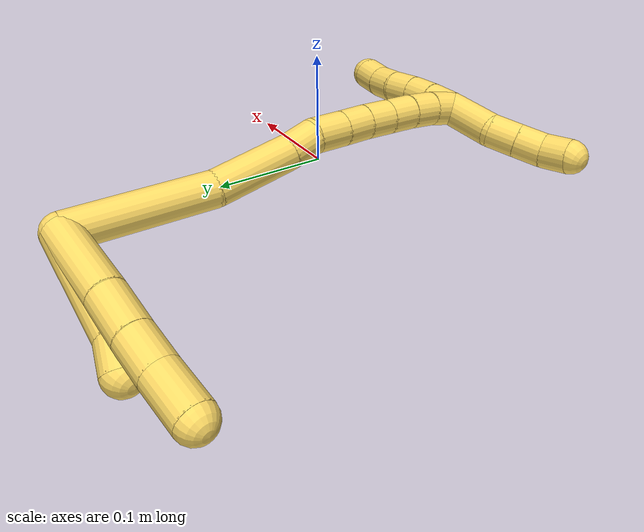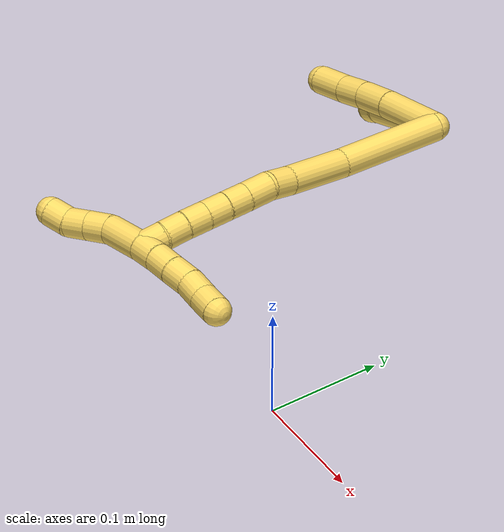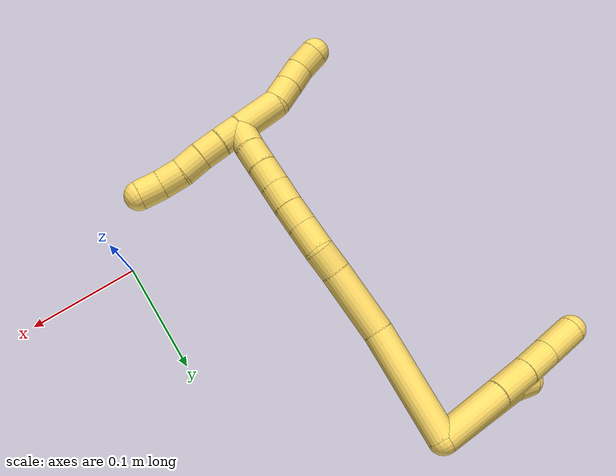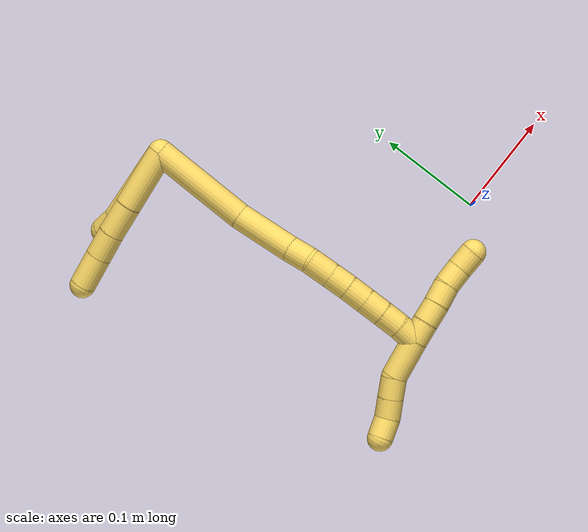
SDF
<sdf version="1.7">
 <world name="default">
  <model name="bin">
   <static>1</static>
   <link name="bottom">
    <collision name="collision-bottom">
     <pose>0 0 -0.01 0 -0 0</pose>
     <geometry><box><size>0.8 0.6 0.02</size></box></geometry>
     <surface>
      <friction><ode><mu>100</mu><mu2>100</mu2></ode></friction>
      <contact><collide_bitmask>65535</collide_bitmask></contact>
     </surface>
    </collision>
   </link>
   <link name="west_wall">
    <collision name="collision-west_wall">
     <pose>-0.41 0 0.1 0 -0 0</pose>
     <geometry><box><size>0.02 0.6 0.2</size></box></geometry>
     <surface>
      <friction><ode><mu>100</mu><mu2>100</mu2></ode></friction>
      <contact><collide_bitmask>65535</collide_bitmask></contact>
     </surface>
    </collision>
   </link>
   <link name="east_wall">
    <collision name="collision-east_wall">
     <pose>0.41 0 0.1 0 -0 0</pose>
     <geometry><box><size>0.02 0.6 0.2</size></box></geometry>
     <surface>
      <friction><ode><mu>100</mu><mu2>100</mu2></ode></friction>
      <contact><collide_bitmask>65535</collide_bitmask></contact>
     </surface>
    </collision>
   </link>
   <link name="south_wall">
    <collision name="collision-south_wall">
     <pose>0 -0.31 0.1 0 -0 0</pose>
     <geometry><box><size>0.8 0.02 0.2</size></box></geometry>
     <surface>
      <friction><ode><mu>100</mu><mu2>100</mu2></ode></friction>
      <contact><collide_bitmask>65535</collide_bitmask></contact>
     </surface>
    </collision>
   </link>
   <link name="north_wall">
    <collision name="collision-north_wall">
     <pose>0 0.31 0.1 0 -0 0</pose>
     <geometry><box><size>0.8 0.02 0.2</size></box></geometry>
     <surface>
      <friction><ode><mu>100</mu><mu2>100</mu2></ode></friction>
      <contact><collide_bitmask>65535</collide_bitmask></contact>
     </surface>
    </collision>
   </link>
  </model>
  <model name="5">
   <static>0</static>
   <link name="5">
    <collision name="collision-cylinder-e_1_2_8">
     <pose>-0.001733 0.000931 0.029857 -0.031187 -0.057959 0.000904</pose>
     <geometry><cylinder><radius>0.0125</radius><length>0.059844</length></cylinder></geometry>
     <surface>
      <friction><ode><mu>1.16</mu><mu2>1.16</mu2><slip1>0</slip1><slip2>0</slip2></ode></friction>
      <contact><ode><kp>1e+06</kp><kd>1</kd><max_vel>0</max_vel><min_depth>0.001</min_depth></ode></contact>
     </surface>
    </collision>
    <visual name="visual-cylinder-e_1_2_8">
     <pose>-0.001733 0.000931 0.029857 -0.031187 -0.057959 0.000904</pose>
     <geometry><cylinder><radius>0.0125</radius><length>0.059844</length></cylinder></geometry>
     <material><ambient>1 0.858824 0.4 1</ambient></material>
    </visual>
    <collision name="collision-cylinder-e_2_8_9">
     <pose>-0.005385 0.002286 0.075411 -0.026939 -0.121595 0.00164</pose>
     <geometry><cylinder><radius>0.0125</radius><length>0.031637</length></cylinder></geometry>
     <surface>
      <friction><ode><mu>1.16</mu><mu2>1.16</mu2><slip1>0</slip1><slip2>0</slip2></ode></friction>
      <contact><ode><kp>1e+06</kp><kd>1</kd><max_vel>0</max_vel><min_depth>0.001</min_depth></ode></contact>
     </surface>
    </collision>
    <visual name="visual-cylinder-e_2_8_9">
     <pose>-0.005385 0.002286 0.075411 -0.026939 -0.121595 0.00164</pose>
     <geometry><cylinder><radius>0.0125</radius><length>0.031637</length></cylinder></geometry>
     <material><ambient>1 0.858824 0.4 1</ambient></material>
    </visual>
    <collision name="collision-cylinder-e_3_9_10">
     <pose>-0.009206 0.002532 0.104175 0.013522 -0.144492 -0.000979</pose>
     <geometry><cylinder><radius>0.0125</radius><length>0.026412</length></cylinder></geometry>
     <surface>
      <friction><ode><mu>1.16</mu><mu2>1.16</mu2><slip1>0</slip1><slip2>0</slip2></ode></friction>
      <contact><ode><kp>1e+06</kp><kd>1</kd><max_vel>0</max_vel><min_depth>0.001</min_depth></ode></contact>
     </surface>
    </collision>
    <visual name="visual-cylinder-e_3_9_10">
     <pose>-0.009206 0.002532 0.104175 0.013522 -0.144492 -0.000979</pose>
     <geometry><cylinder><radius>0.0125</radius><length>0.026412</length></cylinder></geometry>
     <material><ambient>1 0.858824 0.4 1</ambient></material>
    </visual>
    <collision name="collision-cylinder-e_4_10_6">
     <pose>-0.012484 0.002138 0.133234 0.013569 -0.08586 -0.000583</pose>
     <geometry><cylinder><radius>0.0125</radius><length>0.032106</length></cylinder></geometry>
     <surface>
      <friction><ode><mu>1.16</mu><mu2>1.16</mu2><slip1>0</slip1><slip2>0</slip2></ode></friction>
      <contact><ode><kp>1e+06</kp><kd>1</kd><max_vel>0</max_vel><min_depth>0.001</min_depth></ode></contact>
     </surface>
    </collision>
    <visual name="visual-cylinder-e_4_10_6">
     <pose>-0.012484 0.002138 0.133234 0.013569 -0.08586 -0.000583</pose>
     <geometry><cylinder><radius>0.0125</radius><length>0.032106</length></cylinder></geometry>
     <material><ambient>1 0.858824 0.4 1</ambient></material>
    </visual>
    <collision name="collision-cylinder-e_1_2_11">
     <pose>-0.00862 0.002303 0.038723 -0.059406 -0.218653 0.006523</pose>
     <geometry><cylinder><radius>0.0125</radius><length>0.079475</length></cylinder></geometry>
     <surface>
      <friction><ode><mu>1.16</mu><mu2>1.16</mu2><slip1>0</slip1><slip2>0</slip2></ode></friction>
      <contact><ode><kp>1e+06</kp><kd>1</kd><max_vel>0</max_vel><min_depth>0.001</min_depth></ode></contact>
     </surface>
    </collision>
    <visual name="visual-cylinder-e_1_2_11">
     <pose>-0.00862 0.002303 0.038723 -0.059406 -0.218653 0.006523</pose>
     <geometry><cylinder><radius>0.0125</radius><length>0.079475</length></cylinder></geometry>
     <material><ambient>1 0.858824 0.4 1</ambient></material>
    </visual>
    <collision name="collision-cylinder-e_2_11_5">
     <pose>-0.022056 0.006948 0.0862 -0.26144 -0.488523 0.065511</pose>
     <geometry><cylinder><radius>0.0125</radius><length>0.020525</length></cylinder></geometry>
     <surface>
      <friction><ode><mu>1.16</mu><mu2>1.16</mu2><slip1>0</slip1><slip2>0</slip2></ode></friction>
      <contact><ode><kp>1e+06</kp><kd>1</kd><max_vel>0</max_vel><min_depth>0.001</min_depth></ode></contact>
     </surface>
    </collision>
    <visual name="visual-cylinder-e_2_11_5">
     <pose>-0.022056 0.006948 0.0862 -0.26144 -0.488523 0.065511</pose>
     <geometry><cylinder><radius>0.0125</radius><length>0.020525</length></cylinder></geometry>
     <material><ambient>1 0.858824 0.4 1</ambient></material>
    </visual>
    <collision name="collision-cylinder-e_1_2_12">
     <pose>0.007593 -0.046879 0.0073 1.41631 0.158691 0.135967</pose>
     <geometry><cylinder><radius>0.0125</radius><length>0.096095</length></cylinder></geometry>
     <surface>
      <friction><ode><mu>1.16</mu><mu2>1.16</mu2><slip1>0</slip1><slip2>0</slip2></ode></friction>
      <contact><ode><kp>1e+06</kp><kd>1</kd><max_vel>0</max_vel><min_depth>0.001</min_depth></ode></contact>
     </surface>
    </collision>
    <visual name="visual-cylinder-e_1_2_12">
     <pose>0.007593 -0.046879 0.0073 1.41631 0.158691 0.135967</pose>
     <geometry><cylinder><radius>0.0125</radius><length>0.096095</length></cylinder></geometry>
     <material><ambient>1 0.858824 0.4 1</ambient></material>
    </visual>
    <collision name="collision-cylinder-e_2_12_13">
     <pose>0.023602 -0.121312 0.015586 1.53506 0.296274 0.286014</pose>
     <geometry><cylinder><radius>0.0125</radius><length>0.057657</length></cylinder></geometry>
     <surface>
      <friction><ode><mu>1.16</mu><mu2>1.16</mu2><slip1>0</slip1><slip2>0</slip2></ode></friction>
      <contact><ode><kp>1e+06</kp><kd>1</kd><max_vel>0</max_vel><min_depth>0.001</min_depth></ode></contact>
     </surface>
    </collision>
    <visual name="visual-cylinder-e_2_12_13">
     <pose>0.023602 -0.121312 0.015586 1.53506 0.296274 0.286014</pose>
     <geometry><cylinder><radius>0.0125</radius><length>0.057657</length></cylinder></geometry>
     <material><ambient>1 0.858824 0.4 1</ambient></material>
    </visual>
    <collision name="collision-cylinder-e_3_13_14">
     <pose>0.036153 -0.159078 0.016359 1.59157 0.384594 0.392463</pose>
     <geometry><cylinder><radius>0.0125</radius><length>0.022036</length></cylinder></geometry>
     <surface>
      <friction><ode><mu>1.16</mu><mu2>1.16</mu2><slip1>0</slip1><slip2>0</slip2></ode></friction>
      <contact><ode><kp>1e+06</kp><kd>1</kd><max_vel>0</max_vel><min_depth>0.001</min_depth></ode></contact>
     </surface>
    </collision>
    <visual name="visual-cylinder-e_3_13_14">
     <pose>0.036153 -0.159078 0.016359 1.59157 0.384594 0.392463</pose>
     <geometry><cylinder><radius>0.0125</radius><length>0.022036</length></cylinder></geometry>
     <material><ambient>1 0.858824 0.4 1</ambient></material>
    </visual>
    <collision name="collision-cylinder-e_4_14_15">
     <pose>0.041676 -0.181047 0.01725 1.47722 0.117146 0.106687</pose>
     <geometry><cylinder><radius>0.0125</radius><length>0.023782</length></cylinder></geometry>
     <surface>
      <friction><ode><mu>1.16</mu><mu2>1.16</mu2><slip1>0</slip1><slip2>0</slip2></ode></friction>
      <contact><ode><kp>1e+06</kp><kd>1</kd><max_vel>0</max_vel><min_depth>0.001</min_depth></ode></contact>
     </surface>
    </collision>
    <visual name="visual-cylinder-e_4_14_15">
     <pose>0.041676 -0.181047 0.01725 1.47722 0.117146 0.106687</pose>
     <geometry><cylinder><radius>0.0125</radius><length>0.023782</length></cylinder></geometry>
     <material><ambient>1 0.858824 0.4 1</ambient></material>
    </visual>
    <collision name="collision-cylinder-e_5_15_16">
     <pose>0.044425 -0.202679 0.019277 1.47759 0.136169 0.124066</pose>
     <geometry><cylinder><radius>0.0125</radius><length>0.020018</length></cylinder></geometry>
     <surface>
      <friction><ode><mu>1.16</mu><mu2>1.16</mu2><slip1>0</slip1><slip2>0</slip2></ode></friction>
      <contact><ode><kp>1e+06</kp><kd>1</kd><max_vel>0</max_vel><min_depth>0.001</min_depth></ode></contact>
     </surface>
    </collision>
    <visual name="visual-cylinder-e_5_15_16">
     <pose>0.044425 -0.202679 0.019277 1.47759 0.136169 0.124066</pose>
     <geometry><cylinder><radius>0.0125</radius><length>0.020018</length></cylinder></geometry>
     <material><ambient>1 0.858824 0.4 1</ambient></material>
    </visual>
    <collision name="collision-cylinder-e_6_16_17">
     <pose>0.046857 -0.222473 0.02149 1.44146 0.106883 0.093902</pose>
     <geometry><cylinder><radius>0.0125</radius><length>0.020124</length></cylinder></geometry>
     <surface>
      <friction><ode><mu>1.16</mu><mu2>1.16</mu2><slip1>0</slip1><slip2>0</slip2></ode></friction>
      <contact><ode><kp>1e+06</kp><kd>1</kd><max_vel>0</max_vel><min_depth>0.001</min_depth></ode></contact>
     </surface>
    </collision>
    <visual name="visual-cylinder-e_6_16_17">
     <pose>0.046857 -0.222473 0.02149 1.44146 0.106883 0.093902</pose>
     <geometry><cylinder><radius>0.0125</radius><length>0.020124</length></cylinder></geometry>
     <material><ambient>1 0.858824 0.4 1</ambient></material>
    </visual>
    <collision name="collision-cylinder-e_7_17_18">
     <pose>0.049026 -0.242358 0.024063 1.44276 0.108648 0.095579</pose>
     <geometry><cylinder><radius>0.0125</radius><length>0.020214</length></cylinder></geometry>
     <surface>
      <friction><ode><mu>1.16</mu><mu2>1.16</mu2><slip1>0</slip1><slip2>0</slip2></ode></friction>
      <contact><ode><kp>1e+06</kp><kd>1</kd><max_vel>0</max_vel><min_depth>0.001</min_depth></ode></contact>
     </surface>
    </collision>
    <visual name="visual-cylinder-e_7_17_18">
     <pose>0.049026 -0.242358 0.024063 1.44276 0.108648 0.095579</pose>
     <geometry><cylinder><radius>0.0125</radius><length>0.020214</length></cylinder></geometry>
     <material><ambient>1 0.858824 0.4 1</ambient></material>
    </visual>
    <collision name="collision-cylinder-e_8_18_19">
     <pose>0.050651 -0.262243 0.026763 1.42894 0.052678 0.045692</pose>
     <geometry><cylinder><radius>0.0125</radius><length>0.020067</length></cylinder></geometry>
     <surface>
      <friction><ode><mu>1.16</mu><mu2>1.16</mu2><slip1>0</slip1><slip2>0</slip2></ode></friction>
      <contact><ode><kp>1e+06</kp><kd>1</kd><max_vel>0</max_vel><min_depth>0.001</min_depth></ode></contact>
     </surface>
    </collision>
    <visual name="visual-cylinder-e_8_18_19">
     <pose>0.050651 -0.262243 0.026763 1.42894 0.052678 0.045692</pose>
     <geometry><cylinder><radius>0.0125</radius><length>0.020067</length></cylinder></geometry>
     <material><ambient>1 0.858824 0.4 1</ambient></material>
    </visual>
    <collision name="collision-cylinder-e_9_19_1">
     <pose>0.050953 -0.28188 0.03054 1.33257 -0.022609 -0.017776</pose>
     <geometry><cylinder><radius>0.0125</radius><length>0.020007</length></cylinder></geometry>
     <surface>
      <friction><ode><mu>1.16</mu><mu2>1.16</mu2><slip1>0</slip1><slip2>0</slip2></ode></friction>
      <contact><ode><kp>1e+06</kp><kd>1</kd><max_vel>0</max_vel><min_depth>0.001</min_depth></ode></contact>
     </surface>
    </collision>
    <visual name="visual-cylinder-e_9_19_1">
     <pose>0.050953 -0.28188 0.03054 1.33257 -0.022609 -0.017776</pose>
     <geometry><cylinder><radius>0.0125</radius><length>0.020007</length></cylinder></geometry>
     <material><ambient>1 0.858824 0.4 1</ambient></material>
    </visual>
    <collision name="collision-cylinder-e_1_1_20">
     <pose>0.049971 -0.291827 0.022931 3.11872 -0.075633 -2.55446</pose>
     <geometry><cylinder><radius>0.0125</radius><length>0.02</length></cylinder></geometry>
     <surface>
      <friction><ode><mu>1.16</mu><mu2>1.16</mu2><slip1>0</slip1><slip2>0</slip2></ode></friction>
      <contact><ode><kp>1e+06</kp><kd>1</kd><max_vel>0</max_vel><min_depth>0.001</min_depth></ode></contact>
     </surface>
    </collision>
    <visual name="visual-cylinder-e_1_1_20">
     <pose>0.049971 -0.291827 0.022931 3.11872 -0.075633 -2.55446</pose>
     <geometry><cylinder><radius>0.0125</radius><length>0.02</length></cylinder></geometry>
     <material><ambient>1 0.858824 0.4 1</ambient></material>
    </visual>
    <collision name="collision-cylinder-e_2_20_21">
     <pose>0.047832 -0.292512 0.003069 3.0954 -0.138772 -2.49982</pose>
     <geometry><cylinder><radius>0.0125</radius><length>0.02</length></cylinder></geometry>
     <surface>
      <friction><ode><mu>1.16</mu><mu2>1.16</mu2><slip1>0</slip1><slip2>0</slip2></ode></friction>
      <contact><ode><kp>1e+06</kp><kd>1</kd><max_vel>0</max_vel><min_depth>0.001</min_depth></ode></contact>
     </surface>
    </collision>
    <visual name="visual-cylinder-e_2_20_21">
     <pose>0.047832 -0.292512 0.003069 3.0954 -0.138772 -2.49982</pose>
     <geometry><cylinder><radius>0.0125</radius><length>0.02</length></cylinder></geometry>
     <material><ambient>1 0.858824 0.4 1</ambient></material>
    </visual>
    <collision name="collision-cylinder-e_3_21_22">
     <pose>0.044452 -0.292885 -0.016623 -3.13296 -0.201076 3.0561</pose>
     <geometry><cylinder><radius>0.0125</radius><length>0.02</length></cylinder></geometry>
     <surface>
      <friction><ode><mu>1.16</mu><mu2>1.16</mu2><slip1>0</slip1><slip2>0</slip2></ode></friction>
      <contact><ode><kp>1e+06</kp><kd>1</kd><max_vel>0</max_vel><min_depth>0.001</min_depth></ode></contact>
     </surface>
    </collision>
    <visual name="visual-cylinder-e_3_21_22">
     <pose>0.044452 -0.292885 -0.016623 -3.13296 -0.201076 3.0561</pose>
     <geometry><cylinder><radius>0.0125</radius><length>0.02</length></cylinder></geometry>
     <material><ambient>1 0.858824 0.4 1</ambient></material>
    </visual>
    <collision name="collision-cylinder-e_4_22_23">
     <pose>0.040505 -0.294437 -0.036092 2.97396 -0.196197 -1.72834</pose>
     <geometry><cylinder><radius>0.0125</radius><length>0.02</length></cylinder></geometry>
     <surface>
      <friction><ode><mu>1.16</mu><mu2>1.16</mu2><slip1>0</slip1><slip2>0</slip2></ode></friction>
      <contact><ode><kp>1e+06</kp><kd>1</kd><max_vel>0</max_vel><min_depth>0.001</min_depth></ode></contact>
     </surface>
    </collision>
    <visual name="visual-cylinder-e_4_22_23">
     <pose>0.040505 -0.294437 -0.036092 2.97396 -0.196197 -1.72834</pose>
     <geometry><cylinder><radius>0.0125</radius><length>0.02</length></cylinder></geometry>
     <material><ambient>1 0.858824 0.4 1</ambient></material>
    </visual>
    <collision name="collision-cylinder-e_5_23_4">
     <pose>0.037939 -0.297943 -0.055567 2.95311 -0.061642 -0.630591</pose>
     <geometry><cylinder><radius>0.0125</radius><length>0.02</length></cylinder></geometry>
     <surface>
      <friction><ode><mu>1.16</mu><mu2>1.16</mu2><slip1>0</slip1><slip2>0</slip2></ode></friction>
      <contact><ode><kp>1e+06</kp><kd>1</kd><max_vel>0</max_vel><min_depth>0.001</min_depth></ode></contact>
     </surface>
    </collision>
    <visual name="visual-cylinder-e_5_23_4">
     <pose>0.037939 -0.297943 -0.055567 2.95311 -0.061642 -0.630591</pose>
     <geometry><cylinder><radius>0.0125</radius><length>0.02</length></cylinder></geometry>
     <material><ambient>1 0.858824 0.4 1</ambient></material>
    </visual>
    <collision name="collision-cylinder-e_1_1_24">
     <pose>0.050669 -0.29183 0.052535 0.011796 -0.002917 -1.7e-05</pose>
     <geometry><cylinder><radius>0.0125</radius><length>0.039275</length></cylinder></geometry>
     <surface>
      <friction><ode><mu>1.16</mu><mu2>1.16</mu2><slip1>0</slip1><slip2>0</slip2></ode></friction>
      <contact><ode><kp>1e+06</kp><kd>1</kd><max_vel>0</max_vel><min_depth>0.001</min_depth></ode></contact>
     </surface>
    </collision>
    <visual name="visual-cylinder-e_1_1_24">
     <pose>0.050669 -0.29183 0.052535 0.011796 -0.002917 -1.7e-05</pose>
     <geometry><cylinder><radius>0.0125</radius><length>0.039275</length></cylinder></geometry>
     <material><ambient>1 0.858824 0.4 1</ambient></material>
    </visual>
    <collision name="collision-cylinder-e_2_24_25">
     <pose>0.05051 -0.295656 0.081817 0.356663 -0.009919 -0.001788</pose>
     <geometry><cylinder><radius>0.0125</radius><length>0.020587</length></cylinder></geometry>
     <surface>
      <friction><ode><mu>1.16</mu><mu2>1.16</mu2><slip1>0</slip1><slip2>0</slip2></ode></friction>
      <contact><ode><kp>1e+06</kp><kd>1</kd><max_vel>0</max_vel><min_depth>0.001</min_depth></ode></contact>
     </surface>
    </collision>
    <visual name="visual-cylinder-e_2_24_25">
     <pose>0.05051 -0.295656 0.081817 0.356663 -0.009919 -0.001788</pose>
     <geometry><cylinder><radius>0.0125</radius><length>0.020587</length></cylinder></geometry>
     <material><ambient>1 0.858824 0.4 1</ambient></material>
    </visual>
    <collision name="collision-cylinder-e_3_25_26">
     <pose>0.050319 -0.302907 0.100822 0.372525 -0.008786 -0.001656</pose>
     <geometry><cylinder><radius>0.0125</radius><length>0.0201</length></cylinder></geometry>
     <surface>
      <friction><ode><mu>1.16</mu><mu2>1.16</mu2><slip1>0</slip1><slip2>0</slip2></ode></friction>
      <contact><ode><kp>1e+06</kp><kd>1</kd><max_vel>0</max_vel><min_depth>0.001</min_depth></ode></contact>
     </surface>
    </collision>
    <visual name="visual-cylinder-e_3_25_26">
     <pose>0.050319 -0.302907 0.100822 0.372525 -0.008786 -0.001656</pose>
     <geometry><cylinder><radius>0.0125</radius><length>0.0201</length></cylinder></geometry>
     <material><ambient>1 0.858824 0.4 1</ambient></material>
    </visual>
    <collision name="collision-cylinder-e_4_26_3">
     <pose>0.052446 -0.308007 0.119847 0.148145 0.222911 0.01661</pose>
     <geometry><cylinder><radius>0.0125</radius><length>0.020038</length></cylinder></geometry>
     <surface>
      <friction><ode><mu>1.16</mu><mu2>1.16</mu2><slip1>0</slip1><slip2>0</slip2></ode></friction>
      <contact><ode><kp>1e+06</kp><kd>1</kd><max_vel>0</max_vel><min_depth>0.001</min_depth></ode></contact>
     </surface>
    </collision>
    <visual name="visual-cylinder-e_4_26_3">
     <pose>0.052446 -0.308007 0.119847 0.148145 0.222911 0.01661</pose>
     <geometry><cylinder><radius>0.0125</radius><length>0.020038</length></cylinder></geometry>
     <material><ambient>1 0.858824 0.4 1</ambient></material>
    </visual>
    <collision name="collision-sphere-3">
     <pose>0.054661 -0.30945 0.129511 0 -0 0</pose>
     <geometry><sphere><radius>0.0125</radius></sphere></geometry>
     <surface>
      <friction><ode><mu>1.16</mu><mu2>1.16</mu2><slip1>0</slip1><slip2>0</slip2></ode></friction>
      <contact><ode><kp>1e+06</kp><kd>1</kd><max_vel>0</max_vel><min_depth>0.001</min_depth></ode></contact>
     </surface>
    </collision>
    <visual name="visual-sphere-3">
     <pose>0.054661 -0.30945 0.129511 0 -0 0</pose>
     <geometry><sphere><radius>0.0125</radius></sphere></geometry>
     <material><ambient>1 0.858824 0.4 1</ambient></material>
    </visual>
    <collision name="collision-sphere-26">
     <pose>0.050231 -0.306565 0.110183 0 -0 0</pose>
     <geometry><sphere><radius>0.0125</radius></sphere></geometry>
     <surface>
      <friction><ode><mu>1.16</mu><mu2>1.16</mu2><slip1>0</slip1><slip2>0</slip2></ode></friction>
      <contact><ode><kp>1e+06</kp><kd>1</kd><max_vel>0</max_vel><min_depth>0.001</min_depth></ode></contact>
     </surface>
    </collision>
    <visual name="visual-sphere-26">
     <pose>0.050231 -0.306565 0.110183 0 -0 0</pose>
     <geometry><sphere><radius>0.0125</radius></sphere></geometry>
     <material><ambient>1 0.858824 0.4 1</ambient></material>
    </visual>
    <collision name="collision-sphere-25">
     <pose>0.050408 -0.299249 0.091462 0 -0 0</pose>
     <geometry><sphere><radius>0.0125</radius></sphere></geometry>
     <surface>
      <friction><ode><mu>1.16</mu><mu2>1.16</mu2><slip1>0</slip1><slip2>0</slip2></ode></friction>
      <contact><ode><kp>1e+06</kp><kd>1</kd><max_vel>0</max_vel><min_depth>0.001</min_depth></ode></contact>
     </surface>
    </collision>
    <visual name="visual-sphere-25">
     <pose>0.050408 -0.299249 0.091462 0 -0 0</pose>
     <geometry><sphere><radius>0.0125</radius></sphere></geometry>
     <material><ambient>1 0.858824 0.4 1</ambient></material>
    </visual>
    <collision name="collision-sphere-24">
     <pose>0.050612 -0.292062 0.072171 0 -0 0</pose>
     <geometry><sphere><radius>0.0125</radius></sphere></geometry>
     <surface>
      <friction><ode><mu>1.16</mu><mu2>1.16</mu2><slip1>0</slip1><slip2>0</slip2></ode></friction>
      <contact><ode><kp>1e+06</kp><kd>1</kd><max_vel>0</max_vel><min_depth>0.001</min_depth></ode></contact>
     </surface>
    </collision>
    <visual name="visual-sphere-24">
     <pose>0.050612 -0.292062 0.072171 0 -0 0</pose>
     <geometry><sphere><radius>0.0125</radius></sphere></geometry>
     <material><ambient>1 0.858824 0.4 1</ambient></material>
    </visual>
    <collision name="collision-sphere-4">
     <pose>0.037323 -0.299813 -0.065371 0 -0 0</pose>
     <geometry><sphere><radius>0.0125</radius></sphere></geometry>
     <surface>
      <friction><ode><mu>1.16</mu><mu2>1.16</mu2><slip1>0</slip1><slip2>0</slip2></ode></friction>
      <contact><ode><kp>1e+06</kp><kd>1</kd><max_vel>0</max_vel><min_depth>0.001</min_depth></ode></contact>
     </surface>
    </collision>
    <visual name="visual-sphere-4">
     <pose>0.037323 -0.299813 -0.065371 0 -0 0</pose>
     <geometry><sphere><radius>0.0125</radius></sphere></geometry>
     <material><ambient>1 0.858824 0.4 1</ambient></material>
    </visual>
    <collision name="collision-sphere-23">
     <pose>0.038555 -0.296073 -0.045762 0 -0 0</pose>
     <geometry><sphere><radius>0.0125</radius></sphere></geometry>
     <surface>
      <friction><ode><mu>1.16</mu><mu2>1.16</mu2><slip1>0</slip1><slip2>0</slip2></ode></friction>
      <contact><ode><kp>1e+06</kp><kd>1</kd><max_vel>0</max_vel><min_depth>0.001</min_depth></ode></contact>
     </surface>
    </collision>
    <visual name="visual-sphere-23">
     <pose>0.038555 -0.296073 -0.045762 0 -0 0</pose>
     <geometry><sphere><radius>0.0125</radius></sphere></geometry>
     <material><ambient>1 0.858824 0.4 1</ambient></material>
    </visual>
    <collision name="collision-sphere-22">
     <pose>0.042454 -0.2928 -0.026421 0 -0 0</pose>
     <geometry><sphere><radius>0.0125</radius></sphere></geometry>
     <surface>
      <friction><ode><mu>1.16</mu><mu2>1.16</mu2><slip1>0</slip1><slip2>0</slip2></ode></friction>
      <contact><ode><kp>1e+06</kp><kd>1</kd><max_vel>0</max_vel><min_depth>0.001</min_depth></ode></contact>
     </surface>
    </collision>
    <visual name="visual-sphere-22">
     <pose>0.042454 -0.2928 -0.026421 0 -0 0</pose>
     <geometry><sphere><radius>0.0125</radius></sphere></geometry>
     <material><ambient>1 0.858824 0.4 1</ambient></material>
    </visual>
    <collision name="collision-sphere-21">
     <pose>0.046449 -0.292969 -0.006825 0 -0 0</pose>
     <geometry><sphere><radius>0.0125</radius></sphere></geometry>
     <surface>
      <friction><ode><mu>1.16</mu><mu2>1.16</mu2><slip1>0</slip1><slip2>0</slip2></ode></friction>
      <contact><ode><kp>1e+06</kp><kd>1</kd><max_vel>0</max_vel><min_depth>0.001</min_depth></ode></contact>
     </surface>
    </collision>
    <visual name="visual-sphere-21">
     <pose>0.046449 -0.292969 -0.006825 0 -0 0</pose>
     <geometry><sphere><radius>0.0125</radius></sphere></geometry>
     <material><ambient>1 0.858824 0.4 1</ambient></material>
    </visual>
    <collision name="collision-sphere-20">
     <pose>0.049215 -0.292055 0.012962 0 -0 0</pose>
     <geometry><sphere><radius>0.0125</radius></sphere></geometry>
     <surface>
      <friction><ode><mu>1.16</mu><mu2>1.16</mu2><slip1>0</slip1><slip2>0</slip2></ode></friction>
      <contact><ode><kp>1e+06</kp><kd>1</kd><max_vel>0</max_vel><min_depth>0.001</min_depth></ode></contact>
     </surface>
    </collision>
    <visual name="visual-sphere-20">
     <pose>0.049215 -0.292055 0.012962 0 -0 0</pose>
     <geometry><sphere><radius>0.0125</radius></sphere></geometry>
     <material><ambient>1 0.858824 0.4 1</ambient></material>
    </visual>
    <collision name="collision-sphere-11">
     <pose>-0.017239 0.004606 0.077445 0 -0 0</pose>
     <geometry><sphere><radius>0.0125</radius></sphere></geometry>
     <surface>
      <friction><ode><mu>1.16</mu><mu2>1.16</mu2><slip1>0</slip1><slip2>0</slip2></ode></friction>
      <contact><ode><kp>1e+06</kp><kd>1</kd><max_vel>0</max_vel><min_depth>0.001</min_depth></ode></contact>
     </surface>
    </collision>
    <visual name="visual-sphere-11">
     <pose>-0.017239 0.004606 0.077445 0 -0 0</pose>
     <geometry><sphere><radius>0.0125</radius></sphere></geometry>
     <material><ambient>1 0.858824 0.4 1</ambient></material>
    </visual>
    <collision name="collision-sphere-6">
     <pose>-0.01386 0.001921 0.149227 0 -0 0</pose>
     <geometry><sphere><radius>0.0125</radius></sphere></geometry>
     <surface>
      <friction><ode><mu>1.16</mu><mu2>1.16</mu2><slip1>0</slip1><slip2>0</slip2></ode></friction>
      <contact><ode><kp>1e+06</kp><kd>1</kd><max_vel>0</max_vel><min_depth>0.001</min_depth></ode></contact>
     </surface>
    </collision>
    <visual name="visual-sphere-6">
     <pose>-0.01386 0.001921 0.149227 0 -0 0</pose>
     <geometry><sphere><radius>0.0125</radius></sphere></geometry>
     <material><ambient>1 0.858824 0.4 1</ambient></material>
    </visual>
    <collision name="collision-sphere-10">
     <pose>-0.011107 0.002355 0.117242 0 -0 0</pose>
     <geometry><sphere><radius>0.0125</radius></sphere></geometry>
     <surface>
      <friction><ode><mu>1.16</mu><mu2>1.16</mu2><slip1>0</slip1><slip2>0</slip2></ode></friction>
      <contact><ode><kp>1e+06</kp><kd>1</kd><max_vel>0</max_vel><min_depth>0.001</min_depth></ode></contact>
     </surface>
    </collision>
    <visual name="visual-sphere-10">
     <pose>-0.011107 0.002355 0.117242 0 -0 0</pose>
     <geometry><sphere><radius>0.0125</radius></sphere></geometry>
     <material><ambient>1 0.858824 0.4 1</ambient></material>
    </visual>
    <collision name="collision-sphere-9">
     <pose>-0.007304 0.002709 0.091107 0 -0 0</pose>
     <geometry><sphere><radius>0.0125</radius></sphere></geometry>
     <surface>
      <friction><ode><mu>1.16</mu><mu2>1.16</mu2><slip1>0</slip1><slip2>0</slip2></ode></friction>
      <contact><ode><kp>1e+06</kp><kd>1</kd><max_vel>0</max_vel><min_depth>0.001</min_depth></ode></contact>
     </surface>
    </collision>
    <visual name="visual-sphere-9">
     <pose>-0.007304 0.002709 0.091107 0 -0 0</pose>
     <geometry><sphere><radius>0.0125</radius></sphere></geometry>
     <material><ambient>1 0.858824 0.4 1</ambient></material>
    </visual>
    <collision name="collision-sphere-2">
     <geometry><sphere><radius>0.0125</radius></sphere></geometry>
     <surface>
      <friction><ode><mu>1.16</mu><mu2>1.16</mu2><slip1>0</slip1><slip2>0</slip2></ode></friction>
      <contact><ode><kp>1e+06</kp><kd>1</kd><max_vel>0</max_vel><min_depth>0.001</min_depth></ode></contact>
     </surface>
    </collision>
    <visual name="visual-sphere-2">
     <geometry><sphere><radius>0.0125</radius></sphere></geometry>
     <material><ambient>1 0.858824 0.4 1</ambient></material>
    </visual>
    <collision name="collision-sphere-19">
     <pose>0.051179 -0.272162 0.02818 0 -0 0</pose>
     <geometry><sphere><radius>0.0125</radius></sphere></geometry>
     <surface>
      <friction><ode><mu>1.16</mu><mu2>1.16</mu2><slip1>0</slip1><slip2>0</slip2></ode></friction>
      <contact><ode><kp>1e+06</kp><kd>1</kd><max_vel>0</max_vel><min_depth>0.001</min_depth></ode></contact>
     </surface>
    </collision>
    <visual name="visual-sphere-19">
     <pose>0.051179 -0.272162 0.02818 0 -0 0</pose>
     <geometry><sphere><radius>0.0125</radius></sphere></geometry>
     <material><ambient>1 0.858824 0.4 1</ambient></material>
    </visual>
    <collision name="collision-sphere-8">
     <pose>-0.003467 0.001863 0.059715 0 -0 0</pose>
     <geometry><sphere><radius>0.0125</radius></sphere></geometry>
     <surface>
      <friction><ode><mu>1.16</mu><mu2>1.16</mu2><slip1>0</slip1><slip2>0</slip2></ode></friction>
      <contact><ode><kp>1e+06</kp><kd>1</kd><max_vel>0</max_vel><min_depth>0.001</min_depth></ode></contact>
     </surface>
    </collision>
    <visual name="visual-sphere-8">
     <pose>-0.003467 0.001863 0.059715 0 -0 0</pose>
     <geometry><sphere><radius>0.0125</radius></sphere></geometry>
     <material><ambient>1 0.858824 0.4 1</ambient></material>
    </visual>
    <collision name="collision-sphere-5">
     <pose>-0.026872 0.009291 0.094954 0 -0 0</pose>
     <geometry><sphere><radius>0.0125</radius></sphere></geometry>
     <surface>
      <friction><ode><mu>1.16</mu><mu2>1.16</mu2><slip1>0</slip1><slip2>0</slip2></ode></friction>
      <contact><ode><kp>1e+06</kp><kd>1</kd><max_vel>0</max_vel><min_depth>0.001</min_depth></ode></contact>
     </surface>
    </collision>
    <visual name="visual-sphere-5">
     <pose>-0.026872 0.009291 0.094954 0 -0 0</pose>
     <geometry><sphere><radius>0.0125</radius></sphere></geometry>
     <material><ambient>1 0.858824 0.4 1</ambient></material>
    </visual>
    <collision name="collision-sphere-12">
     <pose>0.015185 -0.093758 0.014601 0 -0 0</pose>
     <geometry><sphere><radius>0.0125</radius></sphere></geometry>
     <surface>
      <friction><ode><mu>1.16</mu><mu2>1.16</mu2><slip1>0</slip1><slip2>0</slip2></ode></friction>
      <contact><ode><kp>1e+06</kp><kd>1</kd><max_vel>0</max_vel><min_depth>0.001</min_depth></ode></contact>
     </surface>
    </collision>
    <visual name="visual-sphere-12">
     <pose>0.015185 -0.093758 0.014601 0 -0 0</pose>
     <geometry><sphere><radius>0.0125</radius></sphere></geometry>
     <material><ambient>1 0.858824 0.4 1</ambient></material>
    </visual>
    <collision name="collision-sphere-13">
     <pose>0.032019 -0.148867 0.016571 0 -0 0</pose>
     <geometry><sphere><radius>0.0125</radius></sphere></geometry>
     <surface>
      <friction><ode><mu>1.16</mu><mu2>1.16</mu2><slip1>0</slip1><slip2>0</slip2></ode></friction>
      <contact><ode><kp>1e+06</kp><kd>1</kd><max_vel>0</max_vel><min_depth>0.001</min_depth></ode></contact>
     </surface>
    </collision>
    <visual name="visual-sphere-13">
     <pose>0.032019 -0.148867 0.016571 0 -0 0</pose>
     <geometry><sphere><radius>0.0125</radius></sphere></geometry>
     <material><ambient>1 0.858824 0.4 1</ambient></material>
    </visual>
    <collision name="collision-sphere-14">
     <pose>0.040287 -0.169289 0.016147 0 -0 0</pose>
     <geometry><sphere><radius>0.0125</radius></sphere></geometry>
     <surface>
      <friction><ode><mu>1.16</mu><mu2>1.16</mu2><slip1>0</slip1><slip2>0</slip2></ode></friction>
      <contact><ode><kp>1e+06</kp><kd>1</kd><max_vel>0</max_vel><min_depth>0.001</min_depth></ode></contact>
     </surface>
    </collision>
    <visual name="visual-sphere-14">
     <pose>0.040287 -0.169289 0.016147 0 -0 0</pose>
     <geometry><sphere><radius>0.0125</radius></sphere></geometry>
     <material><ambient>1 0.858824 0.4 1</ambient></material>
    </visual>
    <collision name="collision-sphere-15">
     <pose>0.043066 -0.192805 0.018354 0 -0 0</pose>
     <geometry><sphere><radius>0.0125</radius></sphere></geometry>
     <surface>
      <friction><ode><mu>1.16</mu><mu2>1.16</mu2><slip1>0</slip1><slip2>0</slip2></ode></friction>
      <contact><ode><kp>1e+06</kp><kd>1</kd><max_vel>0</max_vel><min_depth>0.001</min_depth></ode></contact>
     </surface>
    </collision>
    <visual name="visual-sphere-15">
     <pose>0.043066 -0.192805 0.018354 0 -0 0</pose>
     <geometry><sphere><radius>0.0125</radius></sphere></geometry>
     <material><ambient>1 0.858824 0.4 1</ambient></material>
    </visual>
    <collision name="collision-sphere-16">
     <pose>0.045784 -0.212552 0.0202 0 -0 0</pose>
     <geometry><sphere><radius>0.0125</radius></sphere></geometry>
     <surface>
      <friction><ode><mu>1.16</mu><mu2>1.16</mu2><slip1>0</slip1><slip2>0</slip2></ode></friction>
      <contact><ode><kp>1e+06</kp><kd>1</kd><max_vel>0</max_vel><min_depth>0.001</min_depth></ode></contact>
     </surface>
    </collision>
    <visual name="visual-sphere-16">
     <pose>0.045784 -0.212552 0.0202 0 -0 0</pose>
     <geometry><sphere><radius>0.0125</radius></sphere></geometry>
     <material><ambient>1 0.858824 0.4 1</ambient></material>
    </visual>
    <collision name="collision-sphere-17">
     <pose>0.04793 -0.232393 0.022781 0 -0 0</pose>
     <geometry><sphere><radius>0.0125</radius></sphere></geometry>
     <surface>
      <friction><ode><mu>1.16</mu><mu2>1.16</mu2><slip1>0</slip1><slip2>0</slip2></ode></friction>
      <contact><ode><kp>1e+06</kp><kd>1</kd><max_vel>0</max_vel><min_depth>0.001</min_depth></ode></contact>
     </surface>
    </collision>
    <visual name="visual-sphere-17">
     <pose>0.04793 -0.232393 0.022781 0 -0 0</pose>
     <geometry><sphere><radius>0.0125</radius></sphere></geometry>
     <material><ambient>1 0.858824 0.4 1</ambient></material>
    </visual>
    <collision name="collision-sphere-18">
     <pose>0.050122 -0.252324 0.025346 0 -0 0</pose>
     <geometry><sphere><radius>0.0125</radius></sphere></geometry>
     <surface>
      <friction><ode><mu>1.16</mu><mu2>1.16</mu2><slip1>0</slip1><slip2>0</slip2></ode></friction>
      <contact><ode><kp>1e+06</kp><kd>1</kd><max_vel>0</max_vel><min_depth>0.001</min_depth></ode></contact>
     </surface>
    </collision>
    <visual name="visual-sphere-18">
     <pose>0.050122 -0.252324 0.025346 0 -0 0</pose>
     <geometry><sphere><radius>0.0125</radius></sphere></geometry>
     <material><ambient>1 0.858824 0.4 1</ambient></material>
    </visual>
    <collision name="collision-sphere-1">
     <pose>0.050727 -0.291599 0.032899 0 -0 0</pose>
     <geometry><sphere><radius>0.0125</radius></sphere></geometry>
     <surface>
      <friction><ode><mu>1.16</mu><mu2>1.16</mu2><slip1>0</slip1><slip2>0</slip2></ode></friction>
      <contact><ode><kp>1e+06</kp><kd>1</kd><max_vel>0</max_vel><min_depth>0.001</min_depth></ode></contact>
     </surface>
    </collision>
    <visual name="visual-sphere-1">
     <pose>0.050727 -0.291599 0.032899 0 -0 0</pose>
     <geometry><sphere><radius>0.0125</radius></sphere></geometry>
     <material><ambient>1 0.858824 0.4 1</ambient></material>
    </visual>
    <inertial>
     <pose>0.021584 -0.136343 0.036536 0 -0 0</pose>
     <mass>0.75</mass>
     <inertia>
      <ixx>0.000201</ixx>
      <ixy>0</ixy>
      <ixz>0</ixz>
      <iyy>9.7e-05</iyy>
      <iyz>0</iyz>
      <izz>0.000118</izz>
     </inertia>
    </inertial>
   </link>
   <pose>-0.146304 0.262531 0.083815 2.39096 -1.37992 -2.24058</pose>
  </model>
 </world>
</sdf>
